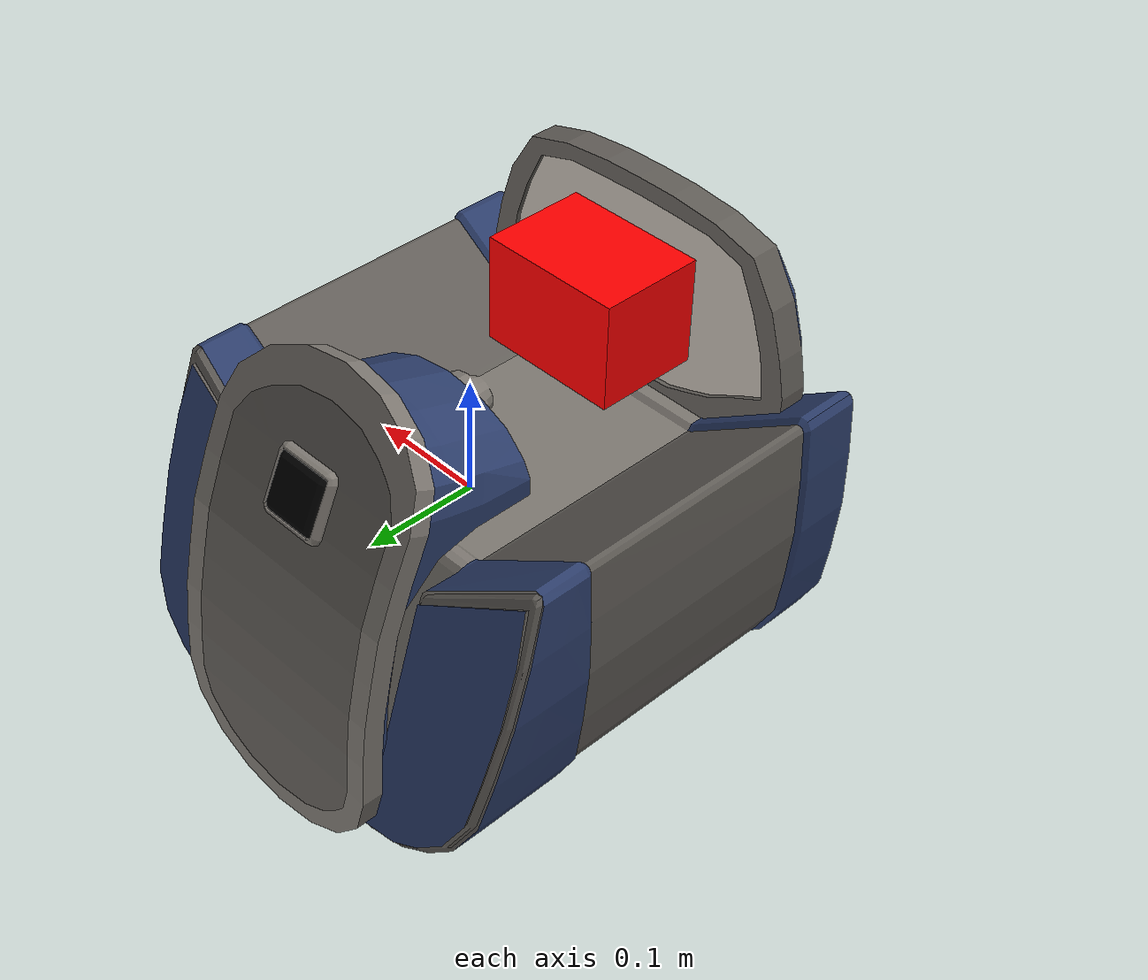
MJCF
<mujoco model="coffee_machine_11">
  <compiler autolimits="true" boundmass="0.01" angle="radian"/>
  <default>
    <default class="/">
      <default class="__VISUAL_MJT__">
        <geom contype="0" conaffinity="0" group="0"/>
      </default>
      <default class="__STRUCTURAL_MJT__">
        <geom contype="8" conaffinity="15" group="4" friction="0.90000000000000002 0.90000000000000002 0.001" solref="0.025000000000000001 1" solimp="0.998 0.998 0.001"/>
      </default>
      <default class="__DYNAMIC_MJT__">
        <geom contype="1" conaffinity="15" group="4" friction="0.90000000000000002 0.90000000000000002 0.001" solref="0.025000000000000001 1" solimp="0.998 0.998 0.001"/>
      </default>
    </default>
  </default>
  <asset>
    <material name="material_coffee_machine_backup_mat" class="/" specular="0.5" shininess="0.5" rgba="0.5 0.5 0.5 1"/>
    <material name="material_Coffee_Machine_Readout_Mat_Off" class="/" specular="0.5" shininess="0.5" rgba="0 0 0 1"/>
    <texture name="Coffee_Machine_Decal_Mat" type="2d" file="Coffee_Machine_Decal_AlbedoTransparency.png"/>
    <material name="material_Coffee_Machine_Decal_Mat" class="/" texture="Coffee_Machine_Decal_Mat" specular="0.5" shininess="0.5" rgba="1 1 1 1"/>
    <texture name="Coffee_Machine_Metal_Mat" type="2d" file="MetalBumpy_AlbedoTransparency.png"/>
    <material name="material_Coffee_Machine_Metal_Mat" class="/" texture="Coffee_Machine_Metal_Mat" specular="0.5" shininess="0.5" rgba="0.66176469999999998 0.66176469999999998 0.66176469999999998 1"/>
    <texture name="Coffee_Machine_Secondary1_Color_Mat" type="2d" file="BrushedIron_AlbedoTransparency.png"/>
    <material name="material_Coffee_Machine_Secondary1_Color_Mat" class="/" texture="Coffee_Machine_Secondary1_Color_Mat" specular="0.5" shininess="0.5" rgba="0.51470590000000005 0.51470590000000005 0.51470590000000005 1"/>
    <texture name="Coffee_Machine_Primary1_Color_Mat" type="2d" file="BumpyPlastic_Albedo.png"/>
    <material name="material_Coffee_Machine_Primary1_Color_Mat" class="/" texture="Coffee_Machine_Primary1_Color_Mat" specular="0.5" shininess="0.5" rgba="0.234375 0.34090910000000002 0.625 1"/>
    <mesh name="coffee_machine_11_coffee_machine_11_0" class="/" file="coffee_machine_11_coffee_machine_11/coffee_machine_11_coffee_machine_11_0.obj" scale="1 1 1"/>
    <mesh name="coffee_machine_11_coffee_machine_11_1" class="/" file="coffee_machine_11_coffee_machine_11/coffee_machine_11_coffee_machine_11_1.obj" scale="1 1 1"/>
    <mesh name="coffee_machine_11_coffee_machine_11_2" class="/" file="coffee_machine_11_coffee_machine_11/coffee_machine_11_coffee_machine_11_2.obj" scale="1 1 1"/>
    <mesh name="coffee_machine_11_coffee_machine_11_3" class="/" file="coffee_machine_11_coffee_machine_11/coffee_machine_11_coffee_machine_11_3.obj" scale="1 1 1"/>
    <mesh name="coffee_machine_11_coffee_machine_11_4" class="/" file="coffee_machine_11_coffee_machine_11/coffee_machine_11_coffee_machine_11_4.obj" scale="1 1 1"/>
    <mesh name="coffee_machine_11_coffee_machine_11_5" class="/" file="coffee_machine_11_coffee_machine_11/coffee_machine_11_coffee_machine_11_5.obj" scale="1 1 1"/>
  </asset>
  <worldbody>
    <body name="coffee_machine_11">
      <joint name="coffee_machine_11_free" class="/" type="free" pos="0 0 0" axis="0 0 1" stiffness="0" range="0 0" armature="0" damping="0.10000000000000001" frictionloss="0"/>
      <body name="coffee_machine_11_coffee_machine_11" pos="-0 -0.21240999999999999 -0.044350000000000001" quat="1 0 0 0">
        <geom name="coffee_machine_11_coffee_machine_11_0" class="__VISUAL_MJT__" type="mesh" material="material_coffee_machine_backup_mat" shellinertia="true" mesh="coffee_machine_11_coffee_machine_11_0"/>
        <geom name="coffee_machine_11_coffee_machine_11_1" class="__VISUAL_MJT__" type="mesh" material="material_Coffee_Machine_Readout_Mat_Off" shellinertia="false" mesh="coffee_machine_11_coffee_machine_11_1"/>
        <geom name="coffee_machine_11_coffee_machine_11_2" class="__VISUAL_MJT__" type="mesh" material="material_Coffee_Machine_Decal_Mat" shellinertia="true" mesh="coffee_machine_11_coffee_machine_11_2"/>
        <geom name="coffee_machine_11_coffee_machine_11_3" class="__VISUAL_MJT__" type="mesh" material="material_Coffee_Machine_Metal_Mat" shellinertia="false" mesh="coffee_machine_11_coffee_machine_11_3"/>
        <geom name="coffee_machine_11_coffee_machine_11_4" class="__VISUAL_MJT__" type="mesh" material="material_Coffee_Machine_Secondary1_Color_Mat" shellinertia="false" mesh="coffee_machine_11_coffee_machine_11_4"/>
        <geom name="coffee_machine_11_coffee_machine_11_5" class="__VISUAL_MJT__" type="mesh" material="material_Coffee_Machine_Primary1_Color_Mat" shellinertia="false" mesh="coffee_machine_11_coffee_machine_11_5"/>
        <site name="coffee_machine_11_Receptacle_0" class="/" type="box" rgba="1 0 0 1" size="0.062889896333217621 0.04575192928314209 0.046242199838161469" pos="-0 0.089151933789253235 0.16110000014305115" quat="1 0 0 0"/>
        <geom name="coffee_machine_11_PrimitiveCollider_0" class="__DYNAMIC_MJT__" type="box" size="0.19078345596790314 0.2124066948890686 0.14585593342781067" rgba="0 1 0 1" pos="-0 0.2124066948890686 -0.014188796281814575" quat="1 0 0 0"/>
        <geom name="coffee_machine_11_PrimitiveCollider_1" class="__DYNAMIC_MJT__" type="box" size="0.19078345596790314 0.020951390266418457 0.12339663505554199" rgba="0 1 0 1" pos="-0 0.020951390266418457 0.12535262107849121" quat="1 0 0 0"/>
        <geom name="coffee_machine_11_PrimitiveCollider_2" class="__DYNAMIC_MJT__" type="box" size="0.10359454154968262 0.072497010231018066 0.11051034927368164" rgba="0 1 0 1" pos="1.3127941400625787e-08 0.30710074305534363 0.094491511583328247" quat="0.98012071847915649 0.19840221107006073 -2.0595773616562355e-18 2.3651383074252408e-08"/>
      </body>
    </body>
  </worldbody>
</mujoco>
